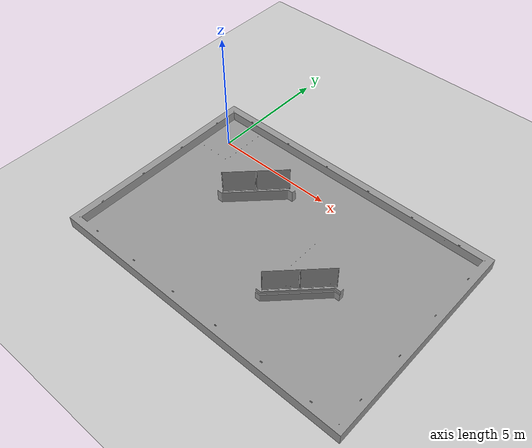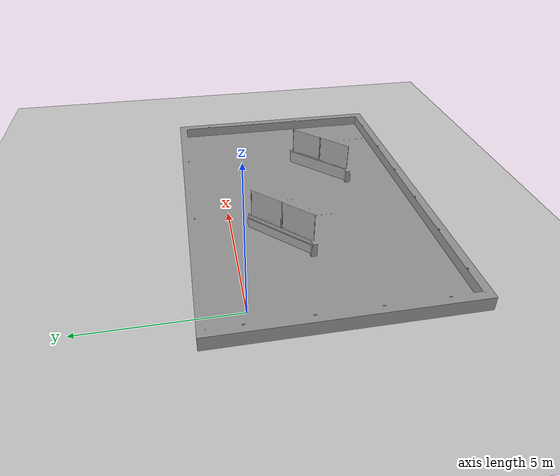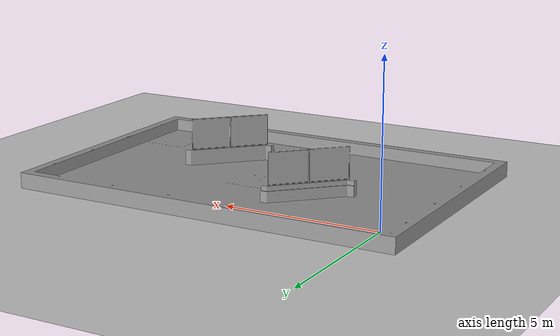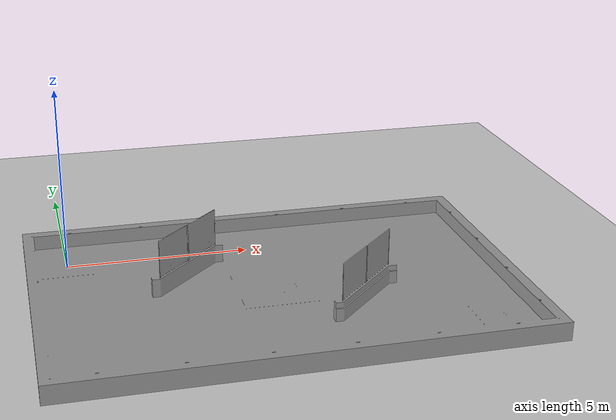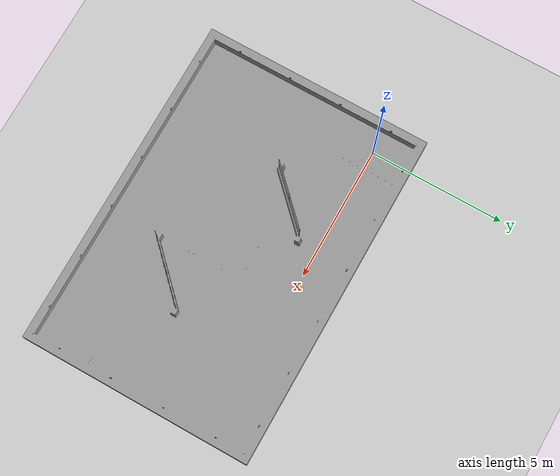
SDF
<?xml version='1.0' encoding='utf-8'?>
<sdf version='1.7'>
  <world name='default'>
    <!-- Physics -->
    <plugin filename="libignition-gazebo-physics-system.so" name="ignition::gazebo::systems::Physics">
    </plugin>

    <!-- Forwards simulation state to the GUI -->
    <plugin filename="libignition-gazebo-scene-broadcaster-system.so" name="ignition::gazebo::systems::SceneBroadcaster">
    </plugin>

    <!-- Processes user commands, like translate and create -->
    <plugin filename="libignition-gazebo-user-commands-system.so" name="ignition::gazebo::systems::UserCommands">
    </plugin>

    <!-- Generates rendering sensor data -->
    <plugin filename="libignition-gazebo-sensors-system.so" name="ignition::gazebo::systems::Sensors">
      <render_engine>ogre</render_engine>
    </plugin>

    <plugin filename="libignition-gazebo-imu-system.so" name="ignition::gazebo::systems::Imu">
    </plugin>

    <light type='directional' name='direct_light'>
      <cast_shadows>false</cast_shadows>
      <pose>6.35 7.6 10 0 0 0</pose>
      <diffuse>1.0 1.0 1.0 1</diffuse>
      <specular>0.5 0.5 0.5 1</specular>
      <attenuation>
        <range>1000</range>
        <constant>0.9</constant>
        <linear>0.01</linear>
        <quadratic>0.001</quadratic>
      </attenuation>
      <direction>0 0 -1</direction>
    </light>

    <!-- Your custom model -->
    <model name='rmsim'>
      <include>
        <uri>model://rmsim</uri>
      </include>
      <pose>0.0 0.0 0.4 3.1415926536 0 0</pose>
      <static>false</static>
    </model>

    <!-- Ground plane -->
    <model name='ground_plane'>
      <static>true</static>
      <link name='link'>
        <collision name='collision'>
          <geometry>
            <plane>
              <normal>0 0 1</normal>
            </plane>
          </geometry>
        </collision>
        <visual name='visual'>
          <geometry>
            <plane>
              <normal>0 0 1</normal>
              <size>100 100</size>
            </plane>
          </geometry>
          <material>
            <ambient>0.8 0.8 0.8 1</ambient>
            <diffuse>0.8 0.8 0.8 1</diffuse>
            <specular>0.8 0.8 0.8 1</specular>
          </material>
        </visual>
      </link>
    </model>
  </world>
</sdf>

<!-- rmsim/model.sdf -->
<sdf version='1.6'>
  <model name='rmsim'>
    <link name='body'>
      <inertial>
        <mass>2</mass>
        <pose frame=''>0 0 0 0 0 0</pose>
        <inertia>
          <ixx>0.570</ixx>
          <ixy>0</ixy>
          <ixz>0</ixz>
          <iyy>0.474</iyy>
          <iyz>0</iyz>
          <izz>0.391</izz>
        </inertia>
      </inertial>
      <pose frame=''>0 0 0 0 0 0</pose>
      <self_collide>0</self_collide>
      <kinematic>0</kinematic>
      <gravity>1</gravity>
      <visual name='visual'>
        <geometry>
          <mesh>
            <uri>model://rmsim/meshes/rmsim.stl</uri>
            <scale>1 1 1</scale>
          </mesh>
        </geometry>
        <meta>
          <layer> 1 </layer>
        </meta>
        <material>
          <lighting>0</lighting>
          <script>
            <uri>file://media/materials/scripts/gazebo.material</uri>
            <name>Gazebo/Grey</name>
          </script>
          <shader type='pixel'>
            <normal_map>__default__</normal_map>
          </shader>
          <ambient>0.3 0.3 0.3 1</ambient>
          <diffuse>0.7 0.7 0.7 1</diffuse>
          <specular>0.01 0.01 0.01 1</specular>
          <emissive>0 0 0 1</emissive>
        </material>
      </visual>
      <collision name='collision_0'>
        <laser_retro>0</laser_retro>
        <max_contacts>10</max_contacts>
        <geometry>
          <mesh>
            <uri>model://rmsim/meshes/rmsim.stl</uri>
            <scale>1 1 1</scale>
          </mesh>
        </geometry>
        <surface>
          <friction>
            <ode>
              <mu>0.1</mu>
              <mu2>0.1</mu2>
              <fdir1>0 0 0</fdir1>
              <slip1>0</slip1>
              <slip2>0</slip2>
            </ode>
            <torsional>
              <coefficient>1</coefficient>
              <patch_radius>0</patch_radius>
              <surface_radius>0</surface_radius>
              <use_patch_radius>1</use_patch_radius>
              <ode>
                <slip>0</slip>
              </ode>
            </torsional>
          </friction>
        </surface>
      </collision>
    </link>
    <static>true</static>
  </model>
</sdf>
